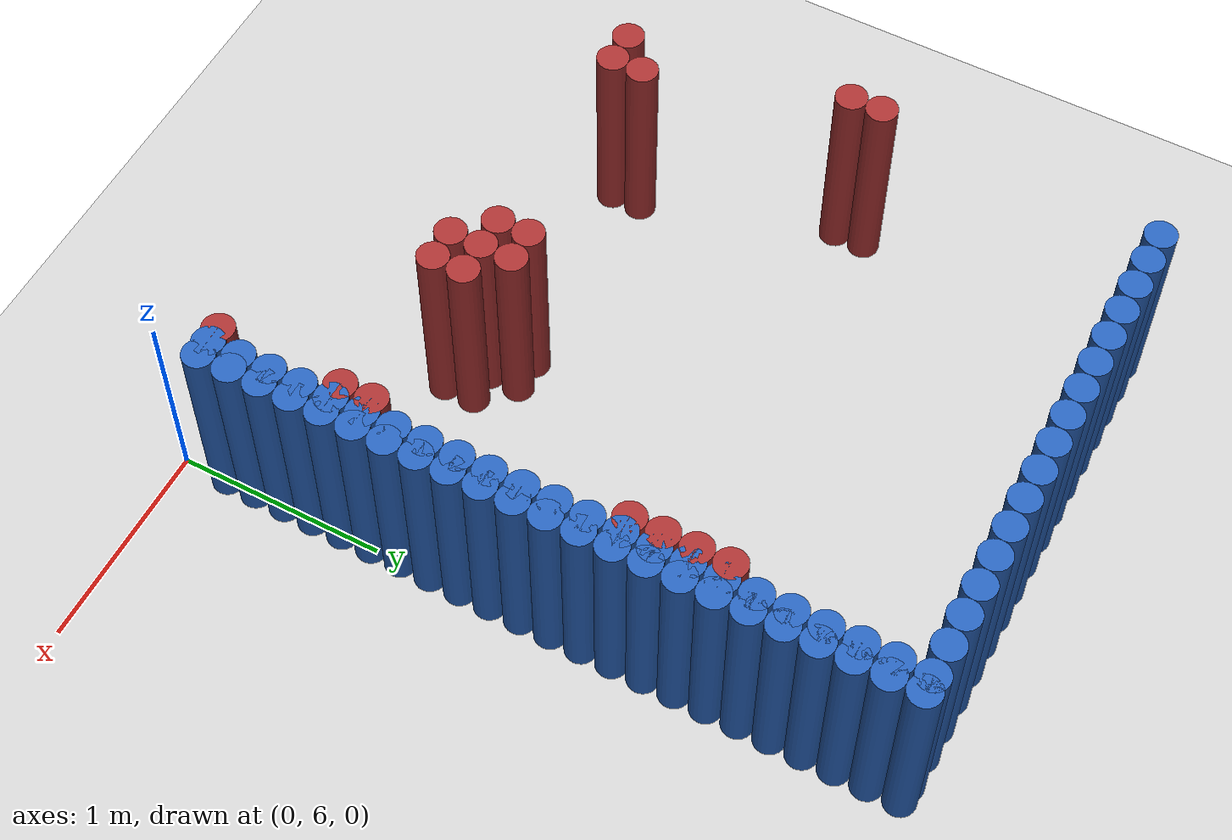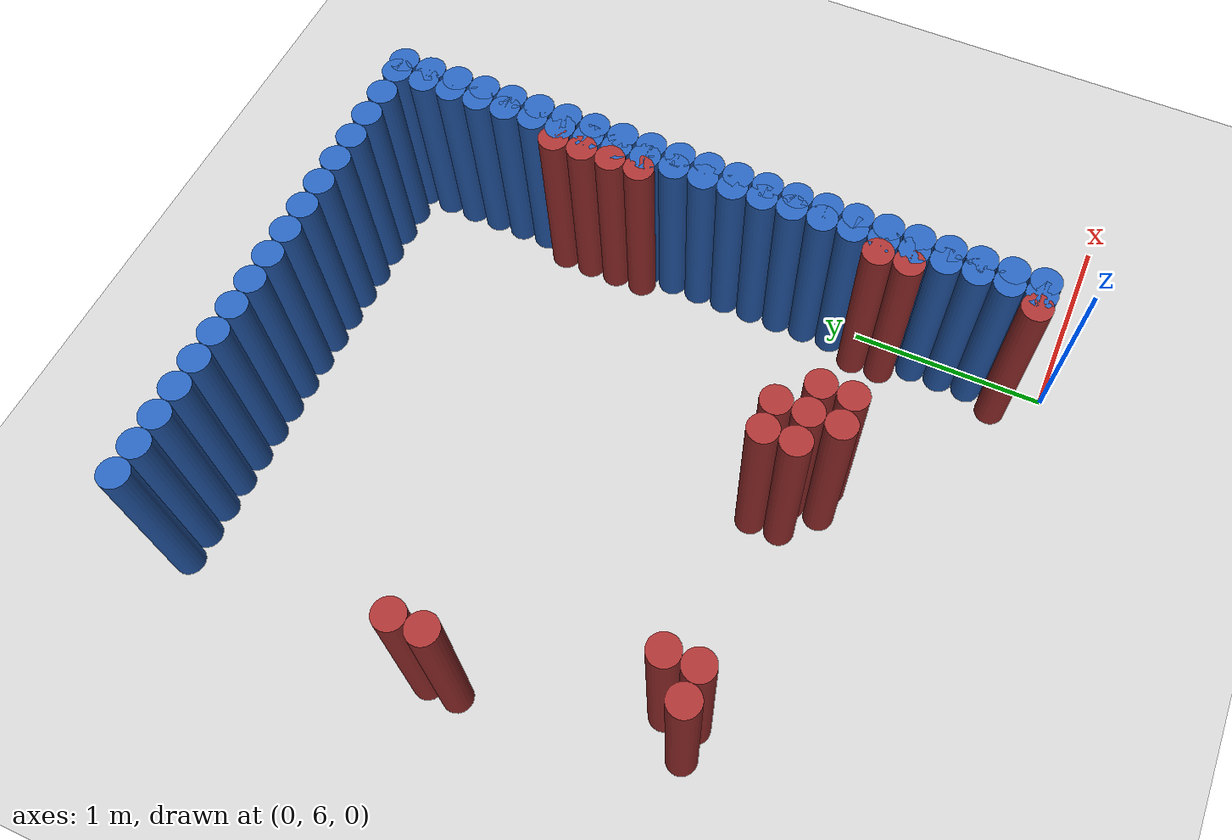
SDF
<sdf version="1.6">
 <world name="barn_world">
  <model name="ground_plane">
   <static>1</static>
   <link name="link">
    <collision name="collision">
     <geometry><plane><normal>0 0 1</normal><size>100 100</size></plane></geometry>
    </collision>
    <visual name="visual">
     <geometry><plane><normal>0 0 1</normal><size>100 100</size></plane></geometry>
     <material>
      <script><uri>file://media/materials/scripts/gazebo.material</uri><name>Gazebo/Grey</name></script>
     </material>
    </visual>
   </link>
  </model>
  <model name="unit_cylinder_182">
   <static>1</static>
   <pose>-2.5500 8.0250 0.5 0 0 0</pose>
   <link name="link">
    <collision name="collision">
     <geometry><cylinder><radius>0.075</radius><length>1</length></cylinder></geometry>
    </collision>
    <visual name="visual">
     <geometry><cylinder><radius>0.075</radius><length>1</length></cylinder></geometry>
     <material><ambient>0.648 0.192 0.192 1</ambient><diffuse>0.648 0.192 0.192 1</diffuse></material>
    </visual>
   </link>
  </model>
  <model name="unit_cylinder_183">
   <static>1</static>
   <pose>-2.5500 8.1750 0.5 0 0 0</pose>
   <link name="link">
    <collision name="collision">
     <geometry><cylinder><radius>0.075</radius><length>1</length></cylinder></geometry>
    </collision>
    <visual name="visual">
     <geometry><cylinder><radius>0.075</radius><length>1</length></cylinder></geometry>
     <material><ambient>0.648 0.192 0.192 1</ambient><diffuse>0.648 0.192 0.192 1</diffuse></material>
    </visual>
   </link>
  </model>
  <model name="unit_cylinder_184">
   <static>1</static>
   <pose>-2.4000 6.9750 0.5 0 0 0</pose>
   <link name="link">
    <collision name="collision">
     <geometry><cylinder><radius>0.075</radius><length>1</length></cylinder></geometry>
    </collision>
    <visual name="visual">
     <geometry><cylinder><radius>0.075</radius><length>1</length></cylinder></geometry>
     <material><ambient>0.648 0.192 0.192 1</ambient><diffuse>0.648 0.192 0.192 1</diffuse></material>
    </visual>
   </link>
  </model>
  <model name="unit_cylinder_185">
   <static>1</static>
   <pose>-2.2500 6.9750 0.5 0 0 0</pose>
   <link name="link">
    <collision name="collision">
     <geometry><cylinder><radius>0.075</radius><length>1</length></cylinder></geometry>
    </collision>
    <visual name="visual">
     <geometry><cylinder><radius>0.075</radius><length>1</length></cylinder></geometry>
     <material><ambient>0.648 0.192 0.192 1</ambient><diffuse>0.648 0.192 0.192 1</diffuse></material>
    </visual>
   </link>
  </model>
  <model name="unit_cylinder_186">
   <static>1</static>
   <pose>-2.2500 7.1250 0.5 0 0 0</pose>
   <link name="link">
    <collision name="collision">
     <geometry><cylinder><radius>0.075</radius><length>1</length></cylinder></geometry>
    </collision>
    <visual name="visual">
     <geometry><cylinder><radius>0.075</radius><length>1</length></cylinder></geometry>
     <material><ambient>0.648 0.192 0.192 1</ambient><diffuse>0.648 0.192 0.192 1</diffuse></material>
    </visual>
   </link>
  </model>
  <model name="unit_cylinder_187">
   <static>1</static>
   <pose>-1.2000 6.9750 0.5 0 0 0</pose>
   <link name="link">
    <collision name="collision">
     <geometry><cylinder><radius>0.075</radius><length>1</length></cylinder></geometry>
    </collision>
    <visual name="visual">
     <geometry><cylinder><radius>0.075</radius><length>1</length></cylinder></geometry>
     <material><ambient>0.648 0.192 0.192 1</ambient><diffuse>0.648 0.192 0.192 1</diffuse></material>
    </visual>
   </link>
  </model>
  <model name="unit_cylinder_188">
   <static>1</static>
   <pose>-1.2000 7.1250 0.5 0 0 0</pose>
   <link name="link">
    <collision name="collision">
     <geometry><cylinder><radius>0.075</radius><length>1</length></cylinder></geometry>
    </collision>
    <visual name="visual">
     <geometry><cylinder><radius>0.075</radius><length>1</length></cylinder></geometry>
     <material><ambient>0.648 0.192 0.192 1</ambient><diffuse>0.648 0.192 0.192 1</diffuse></material>
    </visual>
   </link>
  </model>
  <model name="unit_cylinder_189">
   <static>1</static>
   <pose>-1.0500 6.8250 0.5 0 0 0</pose>
   <link name="link">
    <collision name="collision">
     <geometry><cylinder><radius>0.075</radius><length>1</length></cylinder></geometry>
    </collision>
    <visual name="visual">
     <geometry><cylinder><radius>0.075</radius><length>1</length></cylinder></geometry>
     <material><ambient>0.648 0.192 0.192 1</ambient><diffuse>0.648 0.192 0.192 1</diffuse></material>
    </visual>
   </link>
  </model>
  <model name="unit_cylinder_190">
   <static>1</static>
   <pose>-1.0500 6.9750 0.5 0 0 0</pose>
   <link name="link">
    <collision name="collision">
     <geometry><cylinder><radius>0.075</radius><length>1</length></cylinder></geometry>
    </collision>
    <visual name="visual">
     <geometry><cylinder><radius>0.075</radius><length>1</length></cylinder></geometry>
     <material><ambient>0.648 0.192 0.192 1</ambient><diffuse>0.648 0.192 0.192 1</diffuse></material>
    </visual>
   </link>
  </model>
  <model name="unit_cylinder_191">
   <static>1</static>
   <pose>-1.0500 7.1250 0.5 0 0 0</pose>
   <link name="link">
    <collision name="collision">
     <geometry><cylinder><radius>0.075</radius><length>1</length></cylinder></geometry>
    </collision>
    <visual name="visual">
     <geometry><cylinder><radius>0.075</radius><length>1</length></cylinder></geometry>
     <material><ambient>0.648 0.192 0.192 1</ambient><diffuse>0.648 0.192 0.192 1</diffuse></material>
    </visual>
   </link>
  </model>
  <model name="unit_cylinder_192">
   <static>1</static>
   <pose>-0.9000 6.8250 0.5 0 0 0</pose>
   <link name="link">
    <collision name="collision">
     <geometry><cylinder><radius>0.075</radius><length>1</length></cylinder></geometry>
    </collision>
    <visual name="visual">
     <geometry><cylinder><radius>0.075</radius><length>1</length></cylinder></geometry>
     <material><ambient>0.648 0.192 0.192 1</ambient><diffuse>0.648 0.192 0.192 1</diffuse></material>
    </visual>
   </link>
  </model>
  <model name="unit_cylinder_193">
   <static>1</static>
   <pose>-0.9000 6.9750 0.5 0 0 0</pose>
   <link name="link">
    <collision name="collision">
     <geometry><cylinder><radius>0.075</radius><length>1</length></cylinder></geometry>
    </collision>
    <visual name="visual">
     <geometry><cylinder><radius>0.075</radius><length>1</length></cylinder></geometry>
     <material><ambient>0.648 0.192 0.192 1</ambient><diffuse>0.648 0.192 0.192 1</diffuse></material>
    </visual>
   </link>
  </model>
  <model name="unit_cylinder_197">
   <static>1</static>
   <pose>-0.1500 6.2250 0.5 0 0 0</pose>
   <link name="link">
    <collision name="collision">
     <geometry><cylinder><radius>0.075</radius><length>1</length></cylinder></geometry>
    </collision>
    <visual name="visual">
     <geometry><cylinder><radius>0.075</radius><length>1</length></cylinder></geometry>
     <material><ambient>0.648 0.192 0.192 1</ambient><diffuse>0.648 0.192 0.192 1</diffuse></material>
    </visual>
   </link>
  </model>
  <model name="unit_cylinder_198">
   <static>1</static>
   <pose>-0.1500 6.8250 0.5 0 0 0</pose>
   <link name="link">
    <collision name="collision">
     <geometry><cylinder><radius>0.075</radius><length>1</length></cylinder></geometry>
    </collision>
    <visual name="visual">
     <geometry><cylinder><radius>0.075</radius><length>1</length></cylinder></geometry>
     <material><ambient>0.648 0.192 0.192 1</ambient><diffuse>0.648 0.192 0.192 1</diffuse></material>
    </visual>
   </link>
  </model>
  <model name="unit_cylinder_199">
   <static>1</static>
   <pose>-0.1500 6.9750 0.5 0 0 0</pose>
   <link name="link">
    <collision name="collision">
     <geometry><cylinder><radius>0.075</radius><length>1</length></cylinder></geometry>
    </collision>
    <visual name="visual">
     <geometry><cylinder><radius>0.075</radius><length>1</length></cylinder></geometry>
     <material><ambient>0.648 0.192 0.192 1</ambient><diffuse>0.648 0.192 0.192 1</diffuse></material>
    </visual>
   </link>
  </model>
  <model name="unit_cylinder_200">
   <static>1</static>
   <pose>-0.1500 8.1750 0.5 0 0 0</pose>
   <link name="link">
    <collision name="collision">
     <geometry><cylinder><radius>0.075</radius><length>1</length></cylinder></geometry>
    </collision>
    <visual name="visual">
     <geometry><cylinder><radius>0.075</radius><length>1</length></cylinder></geometry>
     <material><ambient>0.648 0.192 0.192 1</ambient><diffuse>0.648 0.192 0.192 1</diffuse></material>
    </visual>
   </link>
  </model>
  <model name="unit_cylinder_201">
   <static>1</static>
   <pose>-0.1500 8.3250 0.5 0 0 0</pose>
   <link name="link">
    <collision name="collision">
     <geometry><cylinder><radius>0.075</radius><length>1</length></cylinder></geometry>
    </collision>
    <visual name="visual">
     <geometry><cylinder><radius>0.075</radius><length>1</length></cylinder></geometry>
     <material><ambient>0.648 0.192 0.192 1</ambient><diffuse>0.648 0.192 0.192 1</diffuse></material>
    </visual>
   </link>
  </model>
  <model name="unit_cylinder_202">
   <static>1</static>
   <pose>-0.1500 8.4750 0.5 0 0 0</pose>
   <link name="link">
    <collision name="collision">
     <geometry><cylinder><radius>0.075</radius><length>1</length></cylinder></geometry>
    </collision>
    <visual name="visual">
     <geometry><cylinder><radius>0.075</radius><length>1</length></cylinder></geometry>
     <material><ambient>0.648 0.192 0.192 1</ambient><diffuse>0.648 0.192 0.192 1</diffuse></material>
    </visual>
   </link>
  </model>
  <model name="unit_cylinder_203">
   <static>1</static>
   <pose>-0.1500 8.6250 0.5 0 0 0</pose>
   <link name="link">
    <collision name="collision">
     <geometry><cylinder><radius>0.075</radius><length>1</length></cylinder></geometry>
    </collision>
    <visual name="visual">
     <geometry><cylinder><radius>0.075</radius><length>1</length></cylinder></geometry>
     <material><ambient>0.648 0.192 0.192 1</ambient><diffuse>0.648 0.192 0.192 1</diffuse></material>
    </visual>
   </link>
  </model>
  <model name="unit_cylinder_211">
   <static>1</static>
   <pose>0.0000 6.2250 0.5 0 0 0</pose>
   <link name="link">
    <collision name="collision">
     <geometry><cylinder><radius>0.075</radius><length>1</length></cylinder></geometry>
    </collision>
    <visual name="visual">
     <geometry><cylinder><radius>0.075</radius><length>1</length></cylinder></geometry>
     <material><ambient>0.152 0.379 0.72 1</ambient><diffuse>0.152 0.379 0.72 1</diffuse></material>
    </visual>
   </link>
  </model>
  <model name="unit_cylinder_212">
   <static>1</static>
   <pose>0.0000 6.3750 0.5 0 0 0</pose>
   <link name="link">
    <collision name="collision">
     <geometry><cylinder><radius>0.075</radius><length>1</length></cylinder></geometry>
    </collision>
    <visual name="visual">
     <geometry><cylinder><radius>0.075</radius><length>1</length></cylinder></geometry>
     <material><ambient>0.152 0.379 0.72 1</ambient><diffuse>0.152 0.379 0.72 1</diffuse></material>
    </visual>
   </link>
  </model>
  <model name="unit_cylinder_213">
   <static>1</static>
   <pose>0.0000 6.5250 0.5 0 0 0</pose>
   <link name="link">
    <collision name="collision">
     <geometry><cylinder><radius>0.075</radius><length>1</length></cylinder></geometry>
    </collision>
    <visual name="visual">
     <geometry><cylinder><radius>0.075</radius><length>1</length></cylinder></geometry>
     <material><ambient>0.152 0.379 0.72 1</ambient><diffuse>0.152 0.379 0.72 1</diffuse></material>
    </visual>
   </link>
  </model>
  <model name="unit_cylinder_214">
   <static>1</static>
   <pose>0.0000 6.6750 0.5 0 0 0</pose>
   <link name="link">
    <collision name="collision">
     <geometry><cylinder><radius>0.075</radius><length>1</length></cylinder></geometry>
    </collision>
    <visual name="visual">
     <geometry><cylinder><radius>0.075</radius><length>1</length></cylinder></geometry>
     <material><ambient>0.152 0.379 0.72 1</ambient><diffuse>0.152 0.379 0.72 1</diffuse></material>
    </visual>
   </link>
  </model>
  <model name="unit_cylinder_215">
   <static>1</static>
   <pose>0.0000 6.8250 0.5 0 0 0</pose>
   <link name="link">
    <collision name="collision">
     <geometry><cylinder><radius>0.075</radius><length>1</length></cylinder></geometry>
    </collision>
    <visual name="visual">
     <geometry><cylinder><radius>0.075</radius><length>1</length></cylinder></geometry>
     <material><ambient>0.152 0.379 0.72 1</ambient><diffuse>0.152 0.379 0.72 1</diffuse></material>
    </visual>
   </link>
  </model>
  <model name="unit_cylinder_216">
   <static>1</static>
   <pose>0.0000 6.9750 0.5 0 0 0</pose>
   <link name="link">
    <collision name="collision">
     <geometry><cylinder><radius>0.075</radius><length>1</length></cylinder></geometry>
    </collision>
    <visual name="visual">
     <geometry><cylinder><radius>0.075</radius><length>1</length></cylinder></geometry>
     <material><ambient>0.152 0.379 0.72 1</ambient><diffuse>0.152 0.379 0.72 1</diffuse></material>
    </visual>
   </link>
  </model>
  <model name="unit_cylinder_217">
   <static>1</static>
   <pose>0.0000 7.1250 0.5 0 0 0</pose>
   <link name="link">
    <collision name="collision">
     <geometry><cylinder><radius>0.075</radius><length>1</length></cylinder></geometry>
    </collision>
    <visual name="visual">
     <geometry><cylinder><radius>0.075</radius><length>1</length></cylinder></geometry>
     <material><ambient>0.152 0.379 0.72 1</ambient><diffuse>0.152 0.379 0.72 1</diffuse></material>
    </visual>
   </link>
  </model>
  <model name="unit_cylinder_218">
   <static>1</static>
   <pose>0.0000 7.2750 0.5 0 0 0</pose>
   <link name="link">
    <collision name="collision">
     <geometry><cylinder><radius>0.075</radius><length>1</length></cylinder></geometry>
    </collision>
    <visual name="visual">
     <geometry><cylinder><radius>0.075</radius><length>1</length></cylinder></geometry>
     <material><ambient>0.152 0.379 0.72 1</ambient><diffuse>0.152 0.379 0.72 1</diffuse></material>
    </visual>
   </link>
  </model>
  <model name="unit_cylinder_219">
   <static>1</static>
   <pose>0.0000 7.4250 0.5 0 0 0</pose>
   <link name="link">
    <collision name="collision">
     <geometry><cylinder><radius>0.075</radius><length>1</length></cylinder></geometry>
    </collision>
    <visual name="visual">
     <geometry><cylinder><radius>0.075</radius><length>1</length></cylinder></geometry>
     <material><ambient>0.152 0.379 0.72 1</ambient><diffuse>0.152 0.379 0.72 1</diffuse></material>
    </visual>
   </link>
  </model>
  <model name="unit_cylinder_220">
   <static>1</static>
   <pose>0.0000 7.5750 0.5 0 0 0</pose>
   <link name="link">
    <collision name="collision">
     <geometry><cylinder><radius>0.075</radius><length>1</length></cylinder></geometry>
    </collision>
    <visual name="visual">
     <geometry><cylinder><radius>0.075</radius><length>1</length></cylinder></geometry>
     <material><ambient>0.152 0.379 0.72 1</ambient><diffuse>0.152 0.379 0.72 1</diffuse></material>
    </visual>
   </link>
  </model>
  <model name="unit_cylinder_221">
   <static>1</static>
   <pose>0.0000 7.7250 0.5 0 0 0</pose>
   <link name="link">
    <collision name="collision">
     <geometry><cylinder><radius>0.075</radius><length>1</length></cylinder></geometry>
    </collision>
    <visual name="visual">
     <geometry><cylinder><radius>0.075</radius><length>1</length></cylinder></geometry>
     <material><ambient>0.152 0.379 0.72 1</ambient><diffuse>0.152 0.379 0.72 1</diffuse></material>
    </visual>
   </link>
  </model>
  <model name="unit_cylinder_222">
   <static>1</static>
   <pose>0.0000 7.8750 0.5 0 0 0</pose>
   <link name="link">
    <collision name="collision">
     <geometry><cylinder><radius>0.075</radius><length>1</length></cylinder></geometry>
    </collision>
    <visual name="visual">
     <geometry><cylinder><radius>0.075</radius><length>1</length></cylinder></geometry>
     <material><ambient>0.152 0.379 0.72 1</ambient><diffuse>0.152 0.379 0.72 1</diffuse></material>
    </visual>
   </link>
  </model>
  <model name="unit_cylinder_223">
   <static>1</static>
   <pose>0.0000 8.0250 0.5 0 0 0</pose>
   <link name="link">
    <collision name="collision">
     <geometry><cylinder><radius>0.075</radius><length>1</length></cylinder></geometry>
    </collision>
    <visual name="visual">
     <geometry><cylinder><radius>0.075</radius><length>1</length></cylinder></geometry>
     <material><ambient>0.152 0.379 0.72 1</ambient><diffuse>0.152 0.379 0.72 1</diffuse></material>
    </visual>
   </link>
  </model>
  <model name="unit_cylinder_224">
   <static>1</static>
   <pose>0.0000 8.1750 0.5 0 0 0</pose>
   <link name="link">
    <collision name="collision">
     <geometry><cylinder><radius>0.075</radius><length>1</length></cylinder></geometry>
    </collision>
    <visual name="visual">
     <geometry><cylinder><radius>0.075</radius><length>1</length></cylinder></geometry>
     <material><ambient>0.152 0.379 0.72 1</ambient><diffuse>0.152 0.379 0.72 1</diffuse></material>
    </visual>
   </link>
  </model>
  <model name="unit_cylinder_225">
   <static>1</static>
   <pose>0.0000 8.3250 0.5 0 0 0</pose>
   <link name="link">
    <collision name="collision">
     <geometry><cylinder><radius>0.075</radius><length>1</length></cylinder></geometry>
    </collision>
    <visual name="visual">
     <geometry><cylinder><radius>0.075</radius><length>1</length></cylinder></geometry>
     <material><ambient>0.152 0.379 0.72 1</ambient><diffuse>0.152 0.379 0.72 1</diffuse></material>
    </visual>
   </link>
  </model>
  <model name="unit_cylinder_226">
   <static>1</static>
   <pose>0.0000 8.4750 0.5 0 0 0</pose>
   <link name="link">
    <collision name="collision">
     <geometry><cylinder><radius>0.075</radius><length>1</length></cylinder></geometry>
    </collision>
    <visual name="visual">
     <geometry><cylinder><radius>0.075</radius><length>1</length></cylinder></geometry>
     <material><ambient>0.152 0.379 0.72 1</ambient><diffuse>0.152 0.379 0.72 1</diffuse></material>
    </visual>
   </link>
  </model>
  <model name="unit_cylinder_227">
   <static>1</static>
   <pose>0.0000 8.6250 0.5 0 0 0</pose>
   <link name="link">
    <collision name="collision">
     <geometry><cylinder><radius>0.075</radius><length>1</length></cylinder></geometry>
    </collision>
    <visual name="visual">
     <geometry><cylinder><radius>0.075</radius><length>1</length></cylinder></geometry>
     <material><ambient>0.152 0.379 0.72 1</ambient><diffuse>0.152 0.379 0.72 1</diffuse></material>
    </visual>
   </link>
  </model>
  <model name="unit_cylinder_228">
   <static>1</static>
   <pose>0.0000 8.7750 0.5 0 0 0</pose>
   <link name="link">
    <collision name="collision">
     <geometry><cylinder><radius>0.075</radius><length>1</length></cylinder></geometry>
    </collision>
    <visual name="visual">
     <geometry><cylinder><radius>0.075</radius><length>1</length></cylinder></geometry>
     <material><ambient>0.152 0.379 0.72 1</ambient><diffuse>0.152 0.379 0.72 1</diffuse></material>
    </visual>
   </link>
  </model>
  <model name="unit_cylinder_229">
   <static>1</static>
   <pose>0.0000 8.9250 0.5 0 0 0</pose>
   <link name="link">
    <collision name="collision">
     <geometry><cylinder><radius>0.075</radius><length>1</length></cylinder></geometry>
    </collision>
    <visual name="visual">
     <geometry><cylinder><radius>0.075</radius><length>1</length></cylinder></geometry>
     <material><ambient>0.152 0.379 0.72 1</ambient><diffuse>0.152 0.379 0.72 1</diffuse></material>
    </visual>
   </link>
  </model>
  <model name="unit_cylinder_230">
   <static>1</static>
   <pose>0.0000 9.0750 0.5 0 0 0</pose>
   <link name="link">
    <collision name="collision">
     <geometry><cylinder><radius>0.075</radius><length>1</length></cylinder></geometry>
    </collision>
    <visual name="visual">
     <geometry><cylinder><radius>0.075</radius><length>1</length></cylinder></geometry>
     <material><ambient>0.152 0.379 0.72 1</ambient><diffuse>0.152 0.379 0.72 1</diffuse></material>
    </visual>
   </link>
  </model>
  <model name="unit_cylinder_231">
   <static>1</static>
   <pose>0.0000 9.2250 0.5 0 0 0</pose>
   <link name="link">
    <collision name="collision">
     <geometry><cylinder><radius>0.075</radius><length>1</length></cylinder></geometry>
    </collision>
    <visual name="visual">
     <geometry><cylinder><radius>0.075</radius><length>1</length></cylinder></geometry>
     <material><ambient>0.152 0.379 0.72 1</ambient><diffuse>0.152 0.379 0.72 1</diffuse></material>
    </visual>
   </link>
  </model>
  <model name="unit_cylinder_232">
   <static>1</static>
   <pose>0.0000 9.3750 0.5 0 0 0</pose>
   <link name="link">
    <collision name="collision">
     <geometry><cylinder><radius>0.075</radius><length>1</length></cylinder></geometry>
    </collision>
    <visual name="visual">
     <geometry><cylinder><radius>0.075</radius><length>1</length></cylinder></geometry>
     <material><ambient>0.152 0.379 0.72 1</ambient><diffuse>0.152 0.379 0.72 1</diffuse></material>
    </visual>
   </link>
  </model>
  <model name="unit_cylinder_233">
   <static>1</static>
   <pose>0.0000 9.5250 0.5 0 0 0</pose>
   <link name="link">
    <collision name="collision">
     <geometry><cylinder><radius>0.075</radius><length>1</length></cylinder></geometry>
    </collision>
    <visual name="visual">
     <geometry><cylinder><radius>0.075</radius><length>1</length></cylinder></geometry>
     <material><ambient>0.152 0.379 0.72 1</ambient><diffuse>0.152 0.379 0.72 1</diffuse></material>
    </visual>
   </link>
  </model>
  <model name="unit_cylinder_234">
   <static>1</static>
   <pose>-0.0750 9.5250 0.5 0 0 0</pose>
   <link name="link">
    <collision name="collision">
     <geometry><cylinder><radius>0.075</radius><length>1</length></cylinder></geometry>
    </collision>
    <visual name="visual">
     <geometry><cylinder><radius>0.075</radius><length>1</length></cylinder></geometry>
     <material><ambient>0.152 0.379 0.72 1</ambient><diffuse>0.152 0.379 0.72 1</diffuse></material>
    </visual>
   </link>
  </model>
  <model name="unit_cylinder_235">
   <static>1</static>
   <pose>-0.2250 9.5250 0.5 0 0 0</pose>
   <link name="link">
    <collision name="collision">
     <geometry><cylinder><radius>0.075</radius><length>1</length></cylinder></geometry>
    </collision>
    <visual name="visual">
     <geometry><cylinder><radius>0.075</radius><length>1</length></cylinder></geometry>
     <material><ambient>0.152 0.379 0.72 1</ambient><diffuse>0.152 0.379 0.72 1</diffuse></material>
    </visual>
   </link>
  </model>
  <model name="unit_cylinder_236">
   <static>1</static>
   <pose>-0.3750 9.5250 0.5 0 0 0</pose>
   <link name="link">
    <collision name="collision">
     <geometry><cylinder><radius>0.075</radius><length>1</length></cylinder></geometry>
    </collision>
    <visual name="visual">
     <geometry><cylinder><radius>0.075</radius><length>1</length></cylinder></geometry>
     <material><ambient>0.152 0.379 0.72 1</ambient><diffuse>0.152 0.379 0.72 1</diffuse></material>
    </visual>
   </link>
  </model>
  <model name="unit_cylinder_237">
   <static>1</static>
   <pose>-0.5250 9.5250 0.5 0 0 0</pose>
   <link name="link">
    <collision name="collision">
     <geometry><cylinder><radius>0.075</radius><length>1</length></cylinder></geometry>
    </collision>
    <visual name="visual">
     <geometry><cylinder><radius>0.075</radius><length>1</length></cylinder></geometry>
     <material><ambient>0.152 0.379 0.72 1</ambient><diffuse>0.152 0.379 0.72 1</diffuse></material>
    </visual>
   </link>
  </model>
  <model name="unit_cylinder_238">
   <static>1</static>
   <pose>-0.6750 9.5250 0.5 0 0 0</pose>
   <link name="link">
    <collision name="collision">
     <geometry><cylinder><radius>0.075</radius><length>1</length></cylinder></geometry>
    </collision>
    <visual name="visual">
     <geometry><cylinder><radius>0.075</radius><length>1</length></cylinder></geometry>
     <material><ambient>0.152 0.379 0.72 1</ambient><diffuse>0.152 0.379 0.72 1</diffuse></material>
    </visual>
   </link>
  </model>
  <model name="unit_cylinder_239">
   <static>1</static>
   <pose>-0.8250 9.5250 0.5 0 0 0</pose>
   <link name="link">
    <collision name="collision">
     <geometry><cylinder><radius>0.075</radius><length>1</length></cylinder></geometry>
    </collision>
    <visual name="visual">
     <geometry><cylinder><radius>0.075</radius><length>1</length></cylinder></geometry>
     <material><ambient>0.152 0.379 0.72 1</ambient><diffuse>0.152 0.379 0.72 1</diffuse></material>
    </visual>
   </link>
  </model>
  <model name="unit_cylinder_240">
   <static>1</static>
   <pose>-0.9750 9.5250 0.5 0 0 0</pose>
   <link name="link">
    <collision name="collision">
     <geometry><cylinder><radius>0.075</radius><length>1</length></cylinder></geometry>
    </collision>
    <visual name="visual">
     <geometry><cylinder><radius>0.075</radius><length>1</length></cylinder></geometry>
     <material><ambient>0.152 0.379 0.72 1</ambient><diffuse>0.152 0.379 0.72 1</diffuse></material>
    </visual>
   </link>
  </model>
  <model name="unit_cylinder_241">
   <static>1</static>
   <pose>-1.1250 9.5250 0.5 0 0 0</pose>
   <link name="link">
    <collision name="collision">
     <geometry><cylinder><radius>0.075</radius><length>1</length></cylinder></geometry>
    </collision>
    <visual name="visual">
     <geometry><cylinder><radius>0.075</radius><length>1</length></cylinder></geometry>
     <material><ambient>0.152 0.379 0.72 1</ambient><diffuse>0.152 0.379 0.72 1</diffuse></material>
    </visual>
   </link>
  </model>
  <model name="unit_cylinder_242">
   <static>1</static>
   <pose>-1.2750 9.5250 0.5 0 0 0</pose>
   <link name="link">
    <collision name="collision">
     <geometry><cylinder><radius>0.075</radius><length>1</length></cylinder></geometry>
    </collision>
    <visual name="visual">
     <geometry><cylinder><radius>0.075</radius><length>1</length></cylinder></geometry>
     <material><ambient>0.152 0.379 0.72 1</ambient><diffuse>0.152 0.379 0.72 1</diffuse></material>
    </visual>
   </link>
  </model>
  <model name="unit_cylinder_243">
   <static>1</static>
   <pose>-1.4250 9.5250 0.5 0 0 0</pose>
   <link name="link">
    <collision name="collision">
     <geometry><cylinder><radius>0.075</radius><length>1</length></cylinder></geometry>
    </collision>
    <visual name="visual">
     <geometry><cylinder><radius>0.075</radius><length>1</length></cylinder></geometry>
     <material><ambient>0.152 0.379 0.72 1</ambient><diffuse>0.152 0.379 0.72 1</diffuse></material>
    </visual>
   </link>
  </model>
  <model name="unit_cylinder_244">
   <static>1</static>
   <pose>-1.5750 9.5250 0.5 0 0 0</pose>
   <link name="link">
    <collision name="collision">
     <geometry><cylinder><radius>0.075</radius><length>1</length></cylinder></geometry>
    </collision>
    <visual name="visual">
     <geometry><cylinder><radius>0.075</radius><length>1</length></cylinder></geometry>
     <material><ambient>0.152 0.379 0.72 1</ambient><diffuse>0.152 0.379 0.72 1</diffuse></material>
    </visual>
   </link>
  </model>
  <model name="unit_cylinder_245">
   <static>1</static>
   <pose>-1.7250 9.5250 0.5 0 0 0</pose>
   <link name="link">
    <collision name="collision">
     <geometry><cylinder><radius>0.075</radius><length>1</length></cylinder></geometry>
    </collision>
    <visual name="visual">
     <geometry><cylinder><radius>0.075</radius><length>1</length></cylinder></geometry>
     <material><ambient>0.152 0.379 0.72 1</ambient><diffuse>0.152 0.379 0.72 1</diffuse></material>
    </visual>
   </link>
  </model>
  <model name="unit_cylinder_246">
   <static>1</static>
   <pose>-1.8750 9.5250 0.5 0 0 0</pose>
   <link name="link">
    <collision name="collision">
     <geometry><cylinder><radius>0.075</radius><length>1</length></cylinder></geometry>
    </collision>
    <visual name="visual">
     <geometry><cylinder><radius>0.075</radius><length>1</length></cylinder></geometry>
     <material><ambient>0.152 0.379 0.72 1</ambient><diffuse>0.152 0.379 0.72 1</diffuse></material>
    </visual>
   </link>
  </model>
  <model name="unit_cylinder_247">
   <static>1</static>
   <pose>-2.0250 9.5250 0.5 0 0 0</pose>
   <link name="link">
    <collision name="collision">
     <geometry><cylinder><radius>0.075</radius><length>1</length></cylinder></geometry>
    </collision>
    <visual name="visual">
     <geometry><cylinder><radius>0.075</radius><length>1</length></cylinder></geometry>
     <material><ambient>0.152 0.379 0.72 1</ambient><diffuse>0.152 0.379 0.72 1</diffuse></material>
    </visual>
   </link>
  </model>
  <model name="unit_cylinder_248">
   <static>1</static>
   <pose>-2.1750 9.5250 0.5 0 0 0</pose>
   <link name="link">
    <collision name="collision">
     <geometry><cylinder><radius>0.075</radius><length>1</length></cylinder></geometry>
    </collision>
    <visual name="visual">
     <geometry><cylinder><radius>0.075</radius><length>1</length></cylinder></geometry>
     <material><ambient>0.152 0.379 0.72 1</ambient><diffuse>0.152 0.379 0.72 1</diffuse></material>
    </visual>
   </link>
  </model>
  <model name="unit_cylinder_249">
   <static>1</static>
   <pose>-2.3250 9.5250 0.5 0 0 0</pose>
   <link name="link">
    <collision name="collision">
     <geometry><cylinder><radius>0.075</radius><length>1</length></cylinder></geometry>
    </collision>
    <visual name="visual">
     <geometry><cylinder><radius>0.075</radius><length>1</length></cylinder></geometry>
     <material><ambient>0.152 0.379 0.72 1</ambient><diffuse>0.152 0.379 0.72 1</diffuse></material>
    </visual>
   </link>
  </model>
  <model name="unit_cylinder_250">
   <static>1</static>
   <pose>-2.4750 9.5250 0.5 0 0 0</pose>
   <link name="link">
    <collision name="collision">
     <geometry><cylinder><radius>0.075</radius><length>1</length></cylinder></geometry>
    </collision>
    <visual name="visual">
     <geometry><cylinder><radius>0.075</radius><length>1</length></cylinder></geometry>
     <material><ambient>0.152 0.379 0.72 1</ambient><diffuse>0.152 0.379 0.72 1</diffuse></material>
    </visual>
   </link>
  </model>
  <model name="unit_cylinder_278">
   <static>1</static>
   <pose>-0.0750 6.2250 0.5 0 0 0</pose>
   <link name="link">
    <collision name="collision">
     <geometry><cylinder><radius>0.075</radius><length>1</length></cylinder></geometry>
    </collision>
    <visual name="visual">
     <geometry><cylinder><radius>0.075</radius><length>1</length></cylinder></geometry>
     <material><ambient>0.152 0.379 0.72 1</ambient><diffuse>0.152 0.379 0.72 1</diffuse></material>
    </visual>
   </link>
  </model>
  <model name="unit_cylinder_280">
   <static>1</static>
   <pose>-0.0750 6.3750 0.5 0 0 0</pose>
   <link name="link">
    <collision name="collision">
     <geometry><cylinder><radius>0.075</radius><length>1</length></cylinder></geometry>
    </collision>
    <visual name="visual">
     <geometry><cylinder><radius>0.075</radius><length>1</length></cylinder></geometry>
     <material><ambient>0.152 0.379 0.72 1</ambient><diffuse>0.152 0.379 0.72 1</diffuse></material>
    </visual>
   </link>
  </model>
  <model name="unit_cylinder_282">
   <static>1</static>
   <pose>-0.0750 6.5250 0.5 0 0 0</pose>
   <link name="link">
    <collision name="collision">
     <geometry><cylinder><radius>0.075</radius><length>1</length></cylinder></geometry>
    </collision>
    <visual name="visual">
     <geometry><cylinder><radius>0.075</radius><length>1</length></cylinder></geometry>
     <material><ambient>0.152 0.379 0.72 1</ambient><diffuse>0.152 0.379 0.72 1</diffuse></material>
    </visual>
   </link>
  </model>
  <model name="unit_cylinder_284">
   <static>1</static>
   <pose>-0.0750 6.6750 0.5 0 0 0</pose>
   <link name="link">
    <collision name="collision">
     <geometry><cylinder><radius>0.075</radius><length>1</length></cylinder></geometry>
    </collision>
    <visual name="visual">
     <geometry><cylinder><radius>0.075</radius><length>1</length></cylinder></geometry>
     <material><ambient>0.152 0.379 0.72 1</ambient><diffuse>0.152 0.379 0.72 1</diffuse></material>
    </visual>
   </link>
  </model>
  <model name="unit_cylinder_286">
   <static>1</static>
   <pose>-0.0750 6.8250 0.5 0 0 0</pose>
   <link name="link">
    <collision name="collision">
     <geometry><cylinder><radius>0.075</radius><length>1</length></cylinder></geometry>
    </collision>
    <visual name="visual">
     <geometry><cylinder><radius>0.075</radius><length>1</length></cylinder></geometry>
     <material><ambient>0.152 0.379 0.72 1</ambient><diffuse>0.152 0.379 0.72 1</diffuse></material>
    </visual>
   </link>
  </model>
  <model name="unit_cylinder_288">
   <static>1</static>
   <pose>-0.0750 6.9750 0.5 0 0 0</pose>
   <link name="link">
    <collision name="collision">
     <geometry><cylinder><radius>0.075</radius><length>1</length></cylinder></geometry>
    </collision>
    <visual name="visual">
     <geometry><cylinder><radius>0.075</radius><length>1</length></cylinder></geometry>
     <material><ambient>0.152 0.379 0.72 1</ambient><diffuse>0.152 0.379 0.72 1</diffuse></material>
    </visual>
   </link>
  </model>
  <model name="unit_cylinder_290">
   <static>1</static>
   <pose>-0.0750 7.1250 0.5 0 0 0</pose>
   <link name="link">
    <collision name="collision">
     <geometry><cylinder><radius>0.075</radius><length>1</length></cylinder></geometry>
    </collision>
    <visual name="visual">
     <geometry><cylinder><radius>0.075</radius><length>1</length></cylinder></geometry>
     <material><ambient>0.152 0.379 0.72 1</ambient><diffuse>0.152 0.379 0.72 1</diffuse></material>
    </visual>
   </link>
  </model>
  <model name="unit_cylinder_292">
   <static>1</static>
   <pose>-0.0750 7.2750 0.5 0 0 0</pose>
   <link name="link">
    <collision name="collision">
     <geometry><cylinder><radius>0.075</radius><length>1</length></cylinder></geometry>
    </collision>
    <visual name="visual">
     <geometry><cylinder><radius>0.075</radius><length>1</length></cylinder></geometry>
     <material><ambient>0.152 0.379 0.72 1</ambient><diffuse>0.152 0.379 0.72 1</diffuse></material>
    </visual>
   </link>
  </model>
  <model name="unit_cylinder_294">
   <static>1</static>
   <pose>-0.0750 7.4250 0.5 0 0 0</pose>
   <link name="link">
    <collision name="collision">
     <geometry><cylinder><radius>0.075</radius><length>1</length></cylinder></geometry>
    </collision>
    <visual name="visual">
     <geometry><cylinder><radius>0.075</radius><length>1</length></cylinder></geometry>
     <material><ambient>0.152 0.379 0.72 1</ambient><diffuse>0.152 0.379 0.72 1</diffuse></material>
    </visual>
   </link>
  </model>
  <model name="unit_cylinder_296">
   <static>1</static>
   <pose>-0.0750 7.5750 0.5 0 0 0</pose>
   <link name="link">
    <collision name="collision">
     <geometry><cylinder><radius>0.075</radius><length>1</length></cylinder></geometry>
    </collision>
    <visual name="visual">
     <geometry><cylinder><radius>0.075</radius><length>1</length></cylinder></geometry>
     <material><ambient>0.152 0.379 0.72 1</ambient><diffuse>0.152 0.379 0.72 1</diffuse></material>
    </visual>
   </link>
  </model>
  <model name="unit_cylinder_298">
   <static>1</static>
   <pose>-0.0750 7.7250 0.5 0 0 0</pose>
   <link name="link">
    <collision name="collision">
     <geometry><cylinder><radius>0.075</radius><length>1</length></cylinder></geometry>
    </collision>
    <visual name="visual">
     <geometry><cylinder><radius>0.075</radius><length>1</length></cylinder></geometry>
     <material><ambient>0.152 0.379 0.72 1</ambient><diffuse>0.152 0.379 0.72 1</diffuse></material>
    </visual>
   </link>
  </model>
  <model name="unit_cylinder_300">
   <static>1</static>
   <pose>-0.0750 7.8750 0.5 0 0 0</pose>
   <link name="link">
    <collision name="collision">
     <geometry><cylinder><radius>0.075</radius><length>1</length></cylinder></geometry>
    </collision>
    <visual name="visual">
     <geometry><cylinder><radius>0.075</radius><length>1</length></cylinder></geometry>
     <material><ambient>0.152 0.379 0.72 1</ambient><diffuse>0.152 0.379 0.72 1</diffuse></material>
    </visual>
   </link>
  </model>
  <model name="unit_cylinder_302">
   <static>1</static>
   <pose>-0.0750 8.0250 0.5 0 0 0</pose>
   <link name="link">
    <collision name="collision">
     <geometry><cylinder><radius>0.075</radius><length>1</length></cylinder></geometry>
    </collision>
    <visual name="visual">
     <geometry><cylinder><radius>0.075</radius><length>1</length></cylinder></geometry>
     <material><ambient>0.152 0.379 0.72 1</ambient><diffuse>0.152 0.379 0.72 1</diffuse></material>
    </visual>
   </link>
  </model>
  <model name="unit_cylinder_304">
   <static>1</static>
   <pose>-0.0750 8.1750 0.5 0 0 0</pose>
   <link name="link">
    <collision name="collision">
     <geometry><cylinder><radius>0.075</radius><length>1</length></cylinder></geometry>
    </collision>
    <visual name="visual">
     <geometry><cylinder><radius>0.075</radius><length>1</length></cylinder></geometry>
     <material><ambient>0.152 0.379 0.72 1</ambient><diffuse>0.152 0.379 0.72 1</diffuse></material>
    </visual>
   </link>
  </model>
  <model name="unit_cylinder_306">
   <static>1</static>
   <pose>-0.0750 8.3250 0.5 0 0 0</pose>
   <link name="link">
    <collision name="collision">
     <geometry><cylinder><radius>0.075</radius><length>1</length></cylinder></geometry>
    </collision>
    <visual name="visual">
     <geometry><cylinder><radius>0.075</radius><length>1</length></cylinder></geometry>
     <material><ambient>0.152 0.379 0.72 1</ambient><diffuse>0.152 0.379 0.72 1</diffuse></material>
    </visual>
   </link>
  </model>
  <model name="unit_cylinder_308">
   <static>1</static>
   <pose>-0.0750 8.4750 0.5 0 0 0</pose>
   <link name="link">
    <collision name="collision">
     <geometry><cylinder><radius>0.075</radius><length>1</length></cylinder></geometry>
    </collision>
    <visual name="visual">
     <geometry><cylinder><radius>0.075</radius><length>1</length></cylinder></geometry>
     <material><ambient>0.152 0.379 0.72 1</ambient><diffuse>0.152 0.379 0.72 1</diffuse></material>
    </visual>
   </link>
  </model>
  <model name="unit_cylinder_310">
   <static>1</static>
   <pose>-0.0750 8.6250 0.5 0 0 0</pose>
   <link name="link">
    <collision name="collision">
     <geometry><cylinder><radius>0.075</radius><length>1</length></cylinder></geometry>
    </collision>
    <visual name="visual">
     <geometry><cylinder><radius>0.075</radius><length>1</length></cylinder></geometry>
     <material><ambient>0.152 0.379 0.72 1</ambient><diffuse>0.152 0.379 0.72 1</diffuse></material>
    </visual>
   </link>
  </model>
  <model name="unit_cylinder_312">
   <static>1</static>
   <pose>-0.0750 8.7750 0.5 0 0 0</pose>
   <link name="link">
    <collision name="collision">
     <geometry><cylinder><radius>0.075</radius><length>1</length></cylinder></geometry>
    </collision>
    <visual name="visual">
     <geometry><cylinder><radius>0.075</radius><length>1</length></cylinder></geometry>
     <material><ambient>0.152 0.379 0.72 1</ambient><diffuse>0.152 0.379 0.72 1</diffuse></material>
    </visual>
   </link>
  </model>
  <model name="unit_cylinder_314">
   <static>1</static>
   <pose>-0.0750 8.9250 0.5 0 0 0</pose>
   <link name="link">
    <collision name="collision">
     <geometry><cylinder><radius>0.075</radius><length>1</length></cylinder></geometry>
    </collision>
    <visual name="visual">
     <geometry><cylinder><radius>0.075</radius><length>1</length></cylinder></geometry>
     <material><ambient>0.152 0.379 0.72 1</ambient><diffuse>0.152 0.379 0.72 1</diffuse></material>
    </visual>
   </link>
  </model>
  <model name="unit_cylinder_316">
   <static>1</static>
   <pose>-0.0750 9.0750 0.5 0 0 0</pose>
   <link name="link">
    <collision name="collision">
     <geometry><cylinder><radius>0.075</radius><length>1</length></cylinder></geometry>
    </collision>
    <visual name="visual">
     <geometry><cylinder><radius>0.075</radius><length>1</length></cylinder></geometry>
     <material><ambient>0.152 0.379 0.72 1</ambient><diffuse>0.152 0.379 0.72 1</diffuse></material>
    </visual>
   </link>
  </model>
  <model name="unit_cylinder_318">
   <static>1</static>
   <pose>-0.0750 9.2250 0.5 0 0 0</pose>
   <link name="link">
    <collision name="collision">
     <geometry><cylinder><radius>0.075</radius><length>1</length></cylinder></geometry>
    </collision>
    <visual name="visual">
     <geometry><cylinder><radius>0.075</radius><length>1</length></cylinder></geometry>
     <material><ambient>0.152 0.379 0.72 1</ambient><diffuse>0.152 0.379 0.72 1</diffuse></material>
    </visual>
   </link>
  </model>
  <model name="unit_cylinder_320">
   <static>1</static>
   <pose>-0.0750 9.3750 0.5 0 0 0</pose>
   <link name="link">
    <collision name="collision">
     <geometry><cylinder><radius>0.075</radius><length>1</length></cylinder></geometry>
    </collision>
    <visual name="visual">
     <geometry><cylinder><radius>0.075</radius><length>1</length></cylinder></geometry>
     <material><ambient>0.152 0.379 0.72 1</ambient><diffuse>0.152 0.379 0.72 1</diffuse></material>
    </visual>
   </link>
  </model>
 </world>
</sdf>
